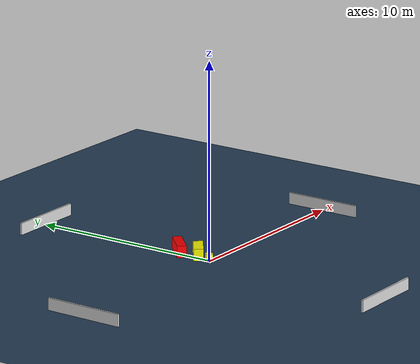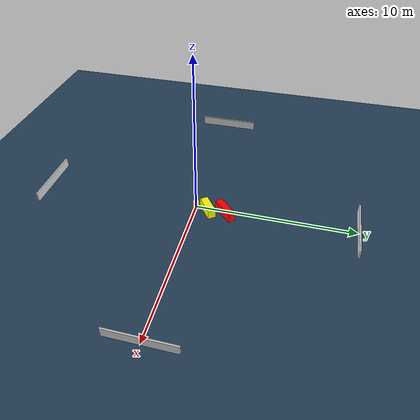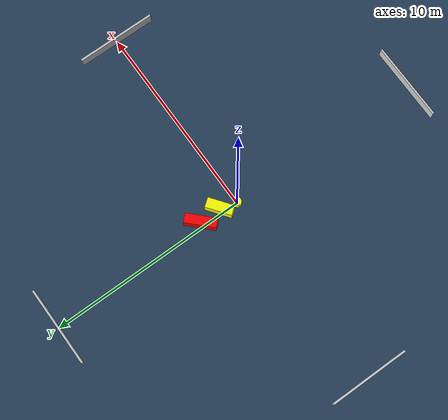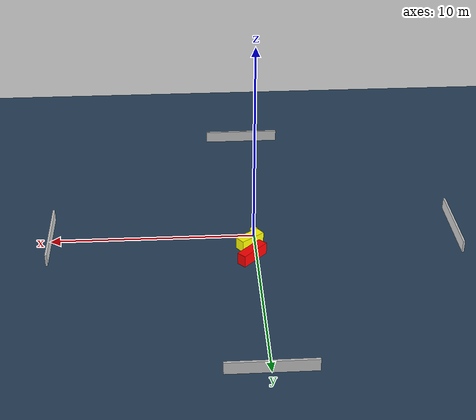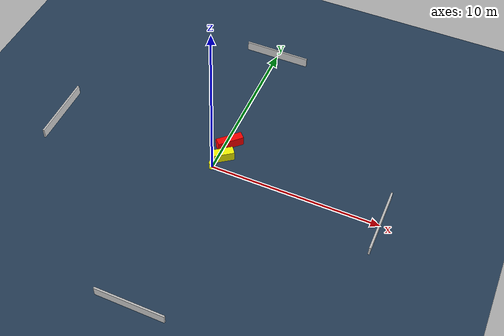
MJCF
<?xml version="1.0" ?>
<mujoco model="generated_environment">
  <option timestep="0.01" integrator="RK4" cone="elliptic"/>
  <default>
    <geom density="1"/>
  </default>
  <asset>
    <texture builtin="gradient" height="3072" name="skybox" rgb1="0.3 0.5 0.7" rgb2="0 0 0" type="skybox" width="512"/>
    <texture builtin="checker" height="300" name="groundplane" rgb1="0.2 0.3 0.4" rgb2="0.1 0.2 0.3" type="2d" width="300"/>
    <material name="groundplane" reflectance="0.2" texrepeat="5 5" texture="groundplane"/>
  </asset>
  <worldbody>
    <light dir="0 0 -1" directional="true" pos="0 0 1.5"/>
    <geom condim="3" friction="0.5 0.005 0.001" material="groundplane" name="floor" pos="0 0 0" size="0 0 0.05" type="plane"/>
    <body name="walls">
      <geom name="wall_1" condim="4" pos="-10.0 0.0 0.3" rgba="0.800000011920929 0.800000011920929 0.800000011920929 1.0" size="0.05 2.0 0.3" type="box"/>
      <geom name="wall_2" condim="4" pos="10.0 0.0 0.3" rgba="0.800000011920929 0.800000011920929 0.800000011920929 1.0" size="0.05 2.0 0.3" type="box"/>
      <geom name="wall_3" condim="4" pos="0.0 -10.0 0.3" rgba="0.800000011920929 0.800000011920929 0.800000011920929 1.0" size="2.0 0.05 0.3" type="box"/>
      <geom name="wall_4" condim="4" pos="0.0 10.0 0.3" rgba="0.800000011920929 0.800000011920929 0.800000011920929 1.0" size="2.0 0.05 0.3" type="box"/>
    </body>
    <body name="robot">
      <joint name="joint_x" type="slide" pos="0 0 0" axis="1 0 0"/>
      <joint name="joint_y" type="slide" pos="0 0 0" axis="0 1 0"/>
      <geom name="robot" type="cylinder" pos="0.0 0.0 0.2" size="0.2 0.2 0.0" mass="5.0" friction="1.0 0.005 0.0001" condim="4" rgba="1.0 1.0 0.0 1.0"/>
    </body>
    <body name="obstacle_1_movable">
      <geom name="obstacle_1_movable" condim="4" pos="0.2584545214308517 0.8332044545280386 0.3" euler="0 0 36.525206426389694" friction="0.0 0.005 0.001" rgba="1.0 1.0 0.0 1.0" size="0.6555169313821283 0.24795948479141947 0.3" type="box" mass="0.1"/>
      <joint type="free"/>
    </body>
    <body name="obstacle_2_static">
      <geom name="obstacle_2_static" condim="4" pos="0.22887756662848294 1.9370334494763144 0.3" euler="0 0 44.82429441351801" friction="0.0 0.005 0.001" rgba="1.0 0.0 0.0 1.0" size="0.7783373507013858 0.23362769031606587 0.3" type="box"/>
    </body>
  </worldbody>
  <actuator>
    <motor name="actuator_x" joint="joint_x" gear="1" ctrlrange="-1 1"/>
    <motor name="actuator_y" joint="joint_y" gear="1" ctrlrange="-1 1"/>
  </actuator>
</mujoco>
